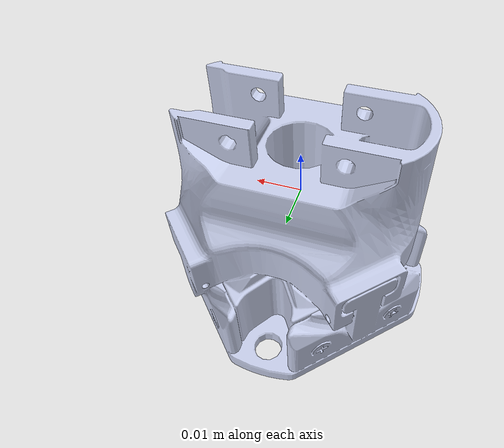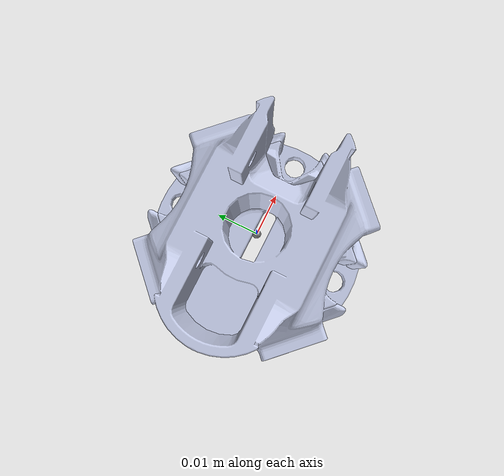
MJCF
<mujoco model="docking">

  <option gravity="0 0 -9.81" timestep="0.001"/>

  <default>
    <geom friction="0.8 0.02 0.01" condim="4" rgba="0.79 0.82 0.93 1"/>
  </default>

  <asset>
    <mesh name="docking_mesh" file="../meshes/hand_docking_link.STL"/>
  </asset>

  <worldbody>
    <body name="hand_docking_link" pos="0 0 0">
      <inertial pos="0.0 0.000613 0.008094"
                mass="0.051956000"
                fullinertia="1.814727e-05 1.736668e-05 1.920788e-05 -2.035277e-10 8.570371e-11 -4.906137e-07"/>
      <geom type="mesh" mesh="docking_mesh" contype="0" conaffinity="0"/>
      <geom type="mesh" mesh="docking_mesh" contype="1" conaffinity="1"
            rgba="0.79 0.82 0.93 0"/>
      <site name="origin" pos="0 0 0" size="0.001"/>
    </body>
  </worldbody>

</mujoco>
